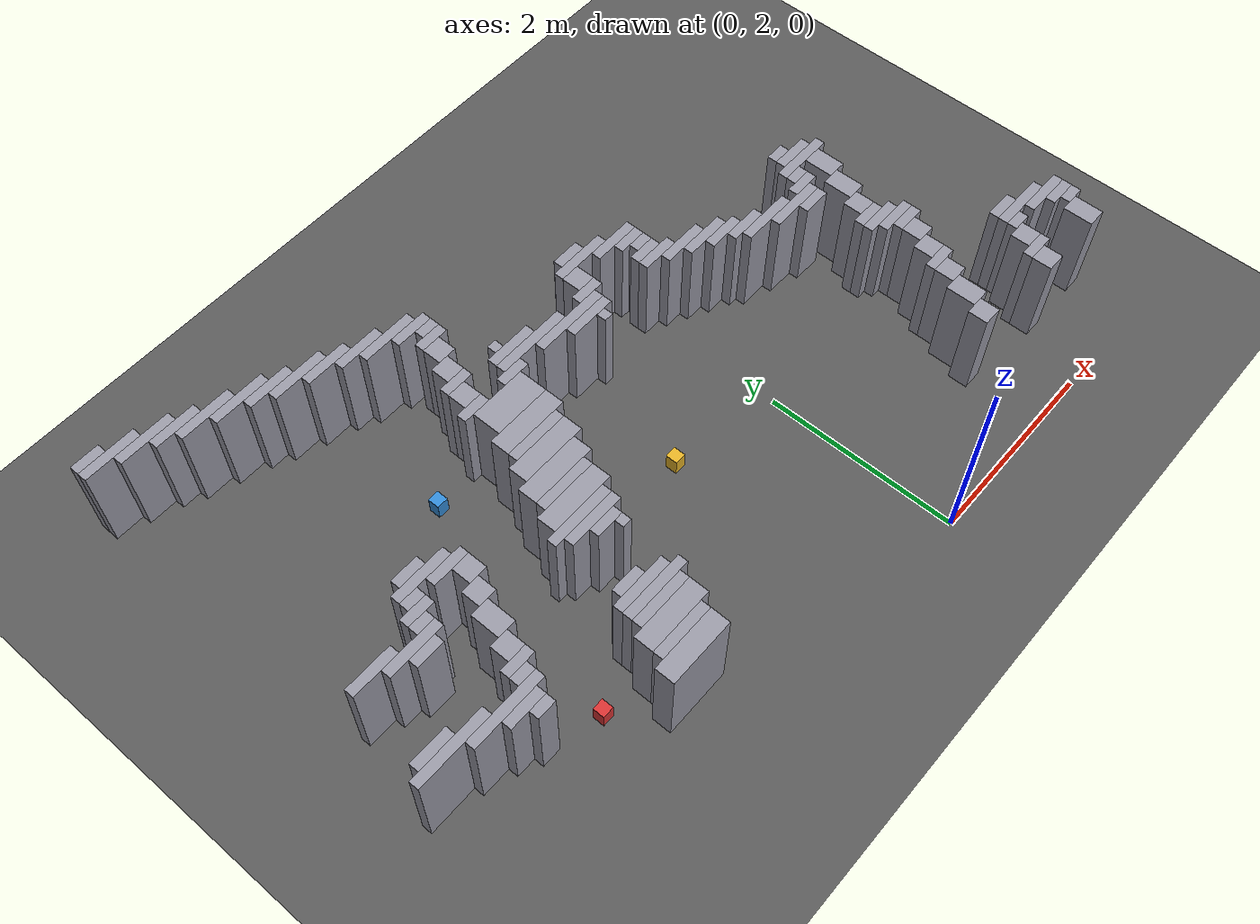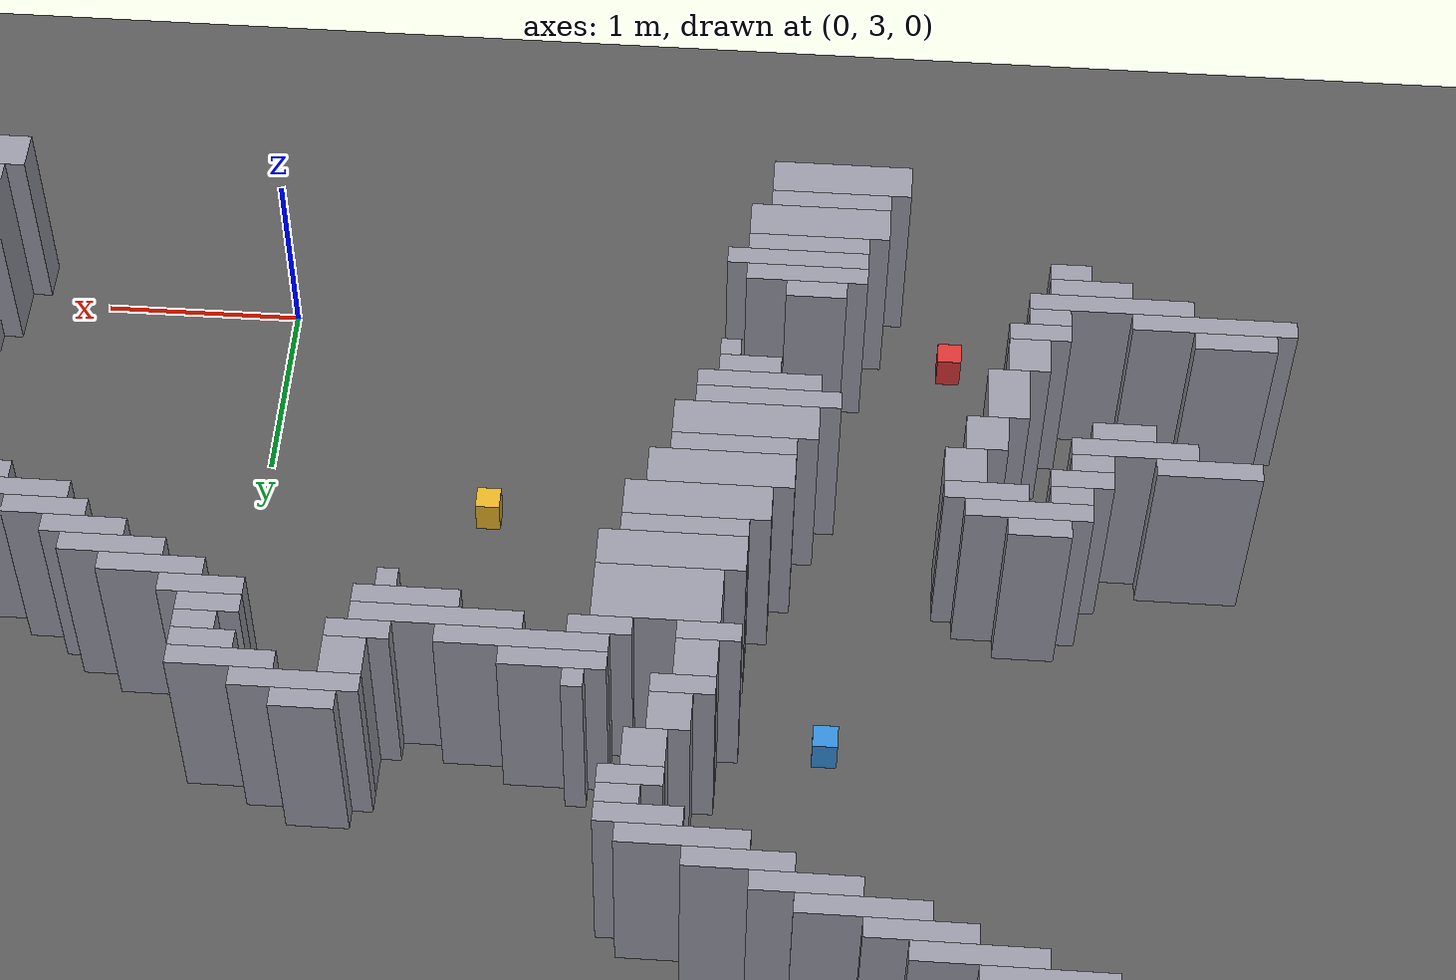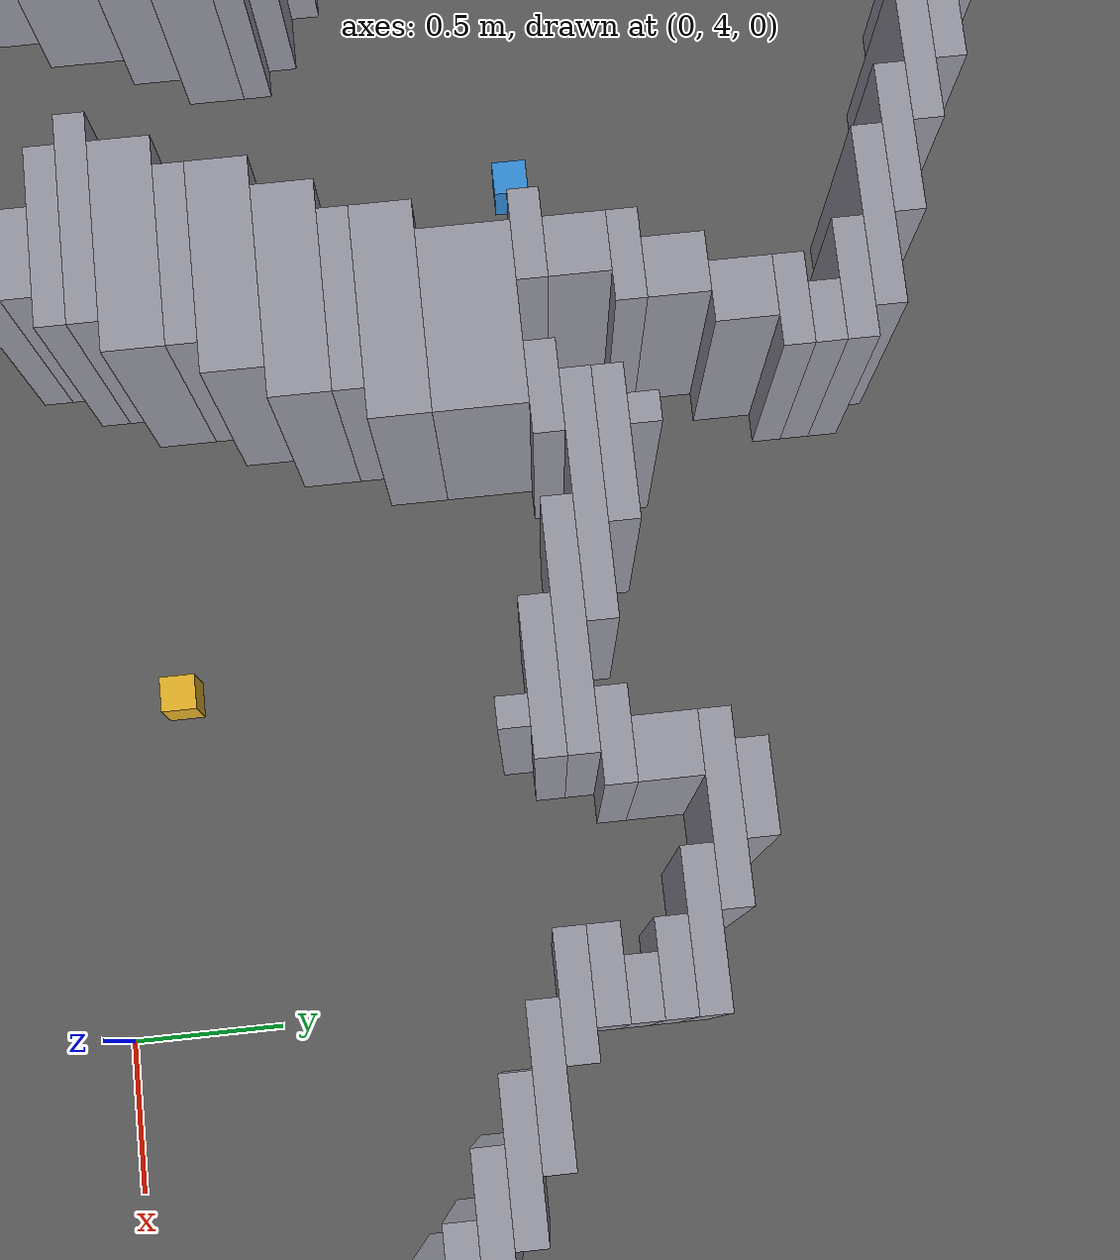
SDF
<sdf version="1.8">
 <world name="dimi">
  <model name="ground">
   <static>true</static>
   <link name="ground_link">
    <collision name="c"><geometry><plane><normal>0 0 1</normal><size>60 60</size></plane></geometry></collision>
    <visual name="v">
     <geometry><plane><normal>0 0 1</normal><size>60 60</size></plane></geometry>
     <material><ambient>0.3 0.3 0.3 1</ambient><diffuse>0.35 0.35 0.35 1</diffuse></material>
    </visual>
   </link>
  </model>
  <model name="walls">
   <static>true</static>
   <link name="wall_0">
    <pose>-4.8230 7.6800 0.5000 0 0 0</pose>
    <collision name="c"><geometry><box><size>0.3000 0.1000 1.0000</size></box></geometry></collision>
    <visual name="v">
     <geometry><box><size>0.3000 0.1000 1.0000</size></box></geometry>
     <material><ambient>0.5 0.5 0.55 1</ambient><diffuse>0.6 0.6 0.65 1</diffuse></material>
    </visual>
   </link>
   <link name="wall_2">
    <pose>-4.6730 7.5800 0.5000 0 0 0</pose>
    <collision name="c"><geometry><box><size>0.6000 0.1000 1.0000</size></box></geometry></collision>
    <visual name="v">
     <geometry><box><size>0.6000 0.1000 1.0000</size></box></geometry>
     <material><ambient>0.5 0.5 0.55 1</ambient><diffuse>0.6 0.6 0.65 1</diffuse></material>
    </visual>
   </link>
   <link name="wall_5">
    <pose>-4.3730 7.4800 0.5000 0 0 0</pose>
    <collision name="c"><geometry><box><size>0.6000 0.1000 1.0000</size></box></geometry></collision>
    <visual name="v">
     <geometry><box><size>0.6000 0.1000 1.0000</size></box></geometry>
     <material><ambient>0.5 0.5 0.55 1</ambient><diffuse>0.6 0.6 0.65 1</diffuse></material>
    </visual>
   </link>
   <link name="wall_7">
    <pose>-4.1230 7.3800 0.5000 0 0 0</pose>
    <collision name="c"><geometry><box><size>0.5000 0.1000 1.0000</size></box></geometry></collision>
    <visual name="v">
     <geometry><box><size>0.5000 0.1000 1.0000</size></box></geometry>
     <material><ambient>0.5 0.5 0.55 1</ambient><diffuse>0.6 0.6 0.65 1</diffuse></material>
    </visual>
   </link>
   <link name="wall_10">
    <pose>-3.8730 7.2800 0.5000 0 0 0</pose>
    <collision name="c"><geometry><box><size>0.6000 0.1000 1.0000</size></box></geometry></collision>
    <visual name="v">
     <geometry><box><size>0.6000 0.1000 1.0000</size></box></geometry>
     <material><ambient>0.5 0.5 0.55 1</ambient><diffuse>0.6 0.6 0.65 1</diffuse></material>
    </visual>
   </link>
   <link name="wall_12">
    <pose>-3.5730 7.1800 0.5000 0 0 0</pose>
    <collision name="c"><geometry><box><size>0.6000 0.1000 1.0000</size></box></geometry></collision>
    <visual name="v">
     <geometry><box><size>0.6000 0.1000 1.0000</size></box></geometry>
     <material><ambient>0.5 0.5 0.55 1</ambient><diffuse>0.6 0.6 0.65 1</diffuse></material>
    </visual>
   </link>
   <link name="wall_14">
    <pose>-3.3230 7.0800 0.5000 0 0 0</pose>
    <collision name="c"><geometry><box><size>0.5000 0.1000 1.0000</size></box></geometry></collision>
    <visual name="v">
     <geometry><box><size>0.5000 0.1000 1.0000</size></box></geometry>
     <material><ambient>0.5 0.5 0.55 1</ambient><diffuse>0.6 0.6 0.65 1</diffuse></material>
    </visual>
   </link>
   <link name="wall_16">
    <pose>-3.0730 6.9800 0.5000 0 0 0</pose>
    <collision name="c"><geometry><box><size>0.6000 0.1000 1.0000</size></box></geometry></collision>
    <visual name="v">
     <geometry><box><size>0.6000 0.1000 1.0000</size></box></geometry>
     <material><ambient>0.5 0.5 0.55 1</ambient><diffuse>0.6 0.6 0.65 1</diffuse></material>
    </visual>
   </link>
   <link name="wall_17">
    <pose>-2.8230 6.8800 0.5000 0 0 0</pose>
    <collision name="c"><geometry><box><size>0.5000 0.1000 1.0000</size></box></geometry></collision>
    <visual name="v">
     <geometry><box><size>0.5000 0.1000 1.0000</size></box></geometry>
     <material><ambient>0.5 0.5 0.55 1</ambient><diffuse>0.6 0.6 0.65 1</diffuse></material>
    </visual>
   </link>
   <link name="wall_19">
    <pose>-2.5230 6.7800 0.5000 0 0 0</pose>
    <collision name="c"><geometry><box><size>0.5000 0.1000 1.0000</size></box></geometry></collision>
    <visual name="v">
     <geometry><box><size>0.5000 0.1000 1.0000</size></box></geometry>
     <material><ambient>0.5 0.5 0.55 1</ambient><diffuse>0.6 0.6 0.65 1</diffuse></material>
    </visual>
   </link>
   <link name="wall_20">
    <pose>-2.2730 6.6800 0.5000 0 0 0</pose>
    <collision name="c"><geometry><box><size>0.6000 0.1000 1.0000</size></box></geometry></collision>
    <visual name="v">
     <geometry><box><size>0.6000 0.1000 1.0000</size></box></geometry>
     <material><ambient>0.5 0.5 0.55 1</ambient><diffuse>0.6 0.6 0.65 1</diffuse></material>
    </visual>
   </link>
   <link name="wall_22">
    <pose>-2.0730 6.5800 0.5000 0 0 0</pose>
    <collision name="c"><geometry><box><size>0.4000 0.1000 1.0000</size></box></geometry></collision>
    <visual name="v">
     <geometry><box><size>0.4000 0.1000 1.0000</size></box></geometry>
     <material><ambient>0.5 0.5 0.55 1</ambient><diffuse>0.6 0.6 0.65 1</diffuse></material>
    </visual>
   </link>
   <link name="wall_24">
    <pose>-1.9730 6.4800 0.5000 0 0 0</pose>
    <collision name="c"><geometry><box><size>0.2000 0.1000 1.0000</size></box></geometry></collision>
    <visual name="v">
     <geometry><box><size>0.2000 0.1000 1.0000</size></box></geometry>
     <material><ambient>0.5 0.5 0.55 1</ambient><diffuse>0.6 0.6 0.65 1</diffuse></material>
    </visual>
   </link>
   <link name="wall_26">
    <pose>-2.0230 6.3800 0.5000 0 0 0</pose>
    <collision name="c"><geometry><box><size>0.3000 0.1000 1.0000</size></box></geometry></collision>
    <visual name="v">
     <geometry><box><size>0.3000 0.1000 1.0000</size></box></geometry>
     <material><ambient>0.5 0.5 0.55 1</ambient><diffuse>0.6 0.6 0.65 1</diffuse></material>
    </visual>
   </link>
   <link name="wall_28">
    <pose>-2.0730 6.2300 0.5000 0 0 0</pose>
    <collision name="c"><geometry><box><size>0.2000 0.2000 1.0000</size></box></geometry></collision>
    <visual name="v">
     <geometry><box><size>0.2000 0.2000 1.0000</size></box></geometry>
     <material><ambient>0.5 0.5 0.55 1</ambient><diffuse>0.6 0.6 0.65 1</diffuse></material>
    </visual>
   </link>
   <link name="wall_30">
    <pose>-2.1730 6.0300 0.5000 0 0 0</pose>
    <collision name="c"><geometry><box><size>0.2000 0.2000 1.0000</size></box></geometry></collision>
    <visual name="v">
     <geometry><box><size>0.2000 0.2000 1.0000</size></box></geometry>
     <material><ambient>0.5 0.5 0.55 1</ambient><diffuse>0.6 0.6 0.65 1</diffuse></material>
    </visual>
   </link>
   <link name="wall_31">
    <pose>-0.5230 6.0800 0.5000 0 0 0</pose>
    <collision name="c"><geometry><box><size>0.3000 0.1000 1.0000</size></box></geometry></collision>
    <visual name="v">
     <geometry><box><size>0.3000 0.1000 1.0000</size></box></geometry>
     <material><ambient>0.5 0.5 0.55 1</ambient><diffuse>0.6 0.6 0.65 1</diffuse></material>
    </visual>
   </link>
   <link name="wall_32">
    <pose>-0.4730 5.9800 0.5000 0 0 0</pose>
    <collision name="c"><geometry><box><size>0.6000 0.1000 1.0000</size></box></geometry></collision>
    <visual name="v">
     <geometry><box><size>0.6000 0.1000 1.0000</size></box></geometry>
     <material><ambient>0.5 0.5 0.55 1</ambient><diffuse>0.6 0.6 0.65 1</diffuse></material>
    </visual>
   </link>
   <link name="wall_35">
    <pose>-2.2230 5.8800 0.5000 0 0 0</pose>
    <collision name="c"><geometry><box><size>0.3000 0.1000 1.0000</size></box></geometry></collision>
    <visual name="v">
     <geometry><box><size>0.3000 0.1000 1.0000</size></box></geometry>
     <material><ambient>0.5 0.5 0.55 1</ambient><diffuse>0.6 0.6 0.65 1</diffuse></material>
    </visual>
   </link>
   <link name="wall_36">
    <pose>-1.7230 5.8800 0.5000 0 0 0</pose>
    <collision name="c"><geometry><box><size>0.1000 0.1000 1.0000</size></box></geometry></collision>
    <visual name="v">
     <geometry><box><size>0.1000 0.1000 1.0000</size></box></geometry>
     <material><ambient>0.5 0.5 0.55 1</ambient><diffuse>0.6 0.6 0.65 1</diffuse></material>
    </visual>
   </link>
   <link name="wall_37">
    <pose>-0.6730 5.8300 0.5000 0 0 0</pose>
    <collision name="c"><geometry><box><size>0.2000 0.2000 1.0000</size></box></geometry></collision>
    <visual name="v">
     <geometry><box><size>0.2000 0.2000 1.0000</size></box></geometry>
     <material><ambient>0.5 0.5 0.55 1</ambient><diffuse>0.6 0.6 0.65 1</diffuse></material>
    </visual>
   </link>
   <link name="wall_38">
    <pose>-0.1230 5.8800 0.5000 0 0 0</pose>
    <collision name="c"><geometry><box><size>0.5000 0.1000 1.0000</size></box></geometry></collision>
    <visual name="v">
     <geometry><box><size>0.5000 0.1000 1.0000</size></box></geometry>
     <material><ambient>0.5 0.5 0.55 1</ambient><diffuse>0.6 0.6 0.65 1</diffuse></material>
    </visual>
   </link>
   <link name="wall_40">
    <pose>-2.2730 5.7300 0.5000 0 0 0</pose>
    <collision name="c"><geometry><box><size>0.2000 0.2000 1.0000</size></box></geometry></collision>
    <visual name="v">
     <geometry><box><size>0.2000 0.2000 1.0000</size></box></geometry>
     <material><ambient>0.5 0.5 0.55 1</ambient><diffuse>0.6 0.6 0.65 1</diffuse></material>
    </visual>
   </link>
   <link name="wall_41">
    <pose>-1.6230 5.7800 0.5000 0 0 0</pose>
    <collision name="c"><geometry><box><size>0.5000 0.1000 1.0000</size></box></geometry></collision>
    <visual name="v">
     <geometry><box><size>0.5000 0.1000 1.0000</size></box></geometry>
     <material><ambient>0.5 0.5 0.55 1</ambient><diffuse>0.6 0.6 0.65 1</diffuse></material>
    </visual>
   </link>
   <link name="wall_42">
    <pose>-0.0230 5.7800 0.5000 0 0 0</pose>
    <collision name="c"><geometry><box><size>0.3000 0.1000 1.0000</size></box></geometry></collision>
    <visual name="v">
     <geometry><box><size>0.3000 0.1000 1.0000</size></box></geometry>
     <material><ambient>0.5 0.5 0.55 1</ambient><diffuse>0.6 0.6 0.65 1</diffuse></material>
    </visual>
   </link>
   <link name="wall_43">
    <pose>-1.4730 5.6800 0.5000 0 0 0</pose>
    <collision name="c"><geometry><box><size>0.8000 0.1000 1.0000</size></box></geometry></collision>
    <visual name="v">
     <geometry><box><size>0.8000 0.1000 1.0000</size></box></geometry>
     <material><ambient>0.5 0.5 0.55 1</ambient><diffuse>0.6 0.6 0.65 1</diffuse></material>
    </visual>
   </link>
   <link name="wall_44">
    <pose>-0.7230 5.6800 0.5000 0 0 0</pose>
    <collision name="c"><geometry><box><size>0.3000 0.1000 1.0000</size></box></geometry></collision>
    <visual name="v">
     <geometry><box><size>0.3000 0.1000 1.0000</size></box></geometry>
     <material><ambient>0.5 0.5 0.55 1</ambient><diffuse>0.6 0.6 0.65 1</diffuse></material>
    </visual>
   </link>
   <link name="wall_45">
    <pose>0.0270 5.6800 0.5000 0 0 0</pose>
    <collision name="c"><geometry><box><size>0.2000 0.1000 1.0000</size></box></geometry></collision>
    <visual name="v">
     <geometry><box><size>0.2000 0.1000 1.0000</size></box></geometry>
     <material><ambient>0.5 0.5 0.55 1</ambient><diffuse>0.6 0.6 0.65 1</diffuse></material>
    </visual>
   </link>
   <link name="wall_47">
    <pose>-2.3230 5.5800 0.5000 0 0 0</pose>
    <collision name="c"><geometry><box><size>0.3000 0.1000 1.0000</size></box></geometry></collision>
    <visual name="v">
     <geometry><box><size>0.3000 0.1000 1.0000</size></box></geometry>
     <material><ambient>0.5 0.5 0.55 1</ambient><diffuse>0.6 0.6 0.65 1</diffuse></material>
    </visual>
   </link>
   <link name="wall_48">
    <pose>-1.8230 5.5800 0.5000 0 0 0</pose>
    <collision name="c"><geometry><box><size>0.3000 0.1000 1.0000</size></box></geometry></collision>
    <visual name="v">
     <geometry><box><size>0.3000 0.1000 1.0000</size></box></geometry>
     <material><ambient>0.5 0.5 0.55 1</ambient><diffuse>0.6 0.6 0.65 1</diffuse></material>
    </visual>
   </link>
   <link name="wall_49">
    <pose>-1.0730 5.5800 0.5000 0 0 0</pose>
    <collision name="c"><geometry><box><size>0.8000 0.1000 1.0000</size></box></geometry></collision>
    <visual name="v">
     <geometry><box><size>0.8000 0.1000 1.0000</size></box></geometry>
     <material><ambient>0.5 0.5 0.55 1</ambient><diffuse>0.6 0.6 0.65 1</diffuse></material>
    </visual>
   </link>
   <link name="wall_50">
    <pose>-0.0230 5.5800 0.5000 0 0 0</pose>
    <collision name="c"><geometry><box><size>0.3000 0.1000 1.0000</size></box></geometry></collision>
    <visual name="v">
     <geometry><box><size>0.3000 0.1000 1.0000</size></box></geometry>
     <material><ambient>0.5 0.5 0.55 1</ambient><diffuse>0.6 0.6 0.65 1</diffuse></material>
    </visual>
   </link>
   <link name="wall_51">
    <pose>-2.0730 5.3800 0.5000 0 0 0</pose>
    <collision name="c"><geometry><box><size>0.6000 0.3000 1.0000</size></box></geometry></collision>
    <visual name="v">
     <geometry><box><size>0.6000 0.3000 1.0000</size></box></geometry>
     <material><ambient>0.5 0.5 0.55 1</ambient><diffuse>0.6 0.6 0.65 1</diffuse></material>
    </visual>
   </link>
   <link name="wall_52">
    <pose>-0.9230 5.4800 0.5000 0 0 0</pose>
    <collision name="c"><geometry><box><size>0.5000 0.1000 1.0000</size></box></geometry></collision>
    <visual name="v">
     <geometry><box><size>0.5000 0.1000 1.0000</size></box></geometry>
     <material><ambient>0.5 0.5 0.55 1</ambient><diffuse>0.6 0.6 0.65 1</diffuse></material>
    </visual>
   </link>
   <link name="wall_53">
    <pose>0.0270 5.4800 0.5000 0 0 0</pose>
    <collision name="c"><geometry><box><size>0.4000 0.1000 1.0000</size></box></geometry></collision>
    <visual name="v">
     <geometry><box><size>0.4000 0.1000 1.0000</size></box></geometry>
     <material><ambient>0.5 0.5 0.55 1</ambient><diffuse>0.6 0.6 0.65 1</diffuse></material>
    </visual>
   </link>
   <link name="wall_55">
    <pose>-0.8230 5.3800 0.5000 0 0 0</pose>
    <collision name="c"><geometry><box><size>0.1000 0.1000 1.0000</size></box></geometry></collision>
    <visual name="v">
     <geometry><box><size>0.1000 0.1000 1.0000</size></box></geometry>
     <material><ambient>0.5 0.5 0.55 1</ambient><diffuse>0.6 0.6 0.65 1</diffuse></material>
    </visual>
   </link>
   <link name="wall_56">
    <pose>0.2770 5.3800 0.5000 0 0 0</pose>
    <collision name="c"><geometry><box><size>0.5000 0.1000 1.0000</size></box></geometry></collision>
    <visual name="v">
     <geometry><box><size>0.5000 0.1000 1.0000</size></box></geometry>
     <material><ambient>0.5 0.5 0.55 1</ambient><diffuse>0.6 0.6 0.65 1</diffuse></material>
    </visual>
   </link>
   <link name="wall_57">
    <pose>1.7270 5.3800 0.5000 0 0 0</pose>
    <collision name="c"><geometry><box><size>0.2000 0.1000 1.0000</size></box></geometry></collision>
    <visual name="v">
     <geometry><box><size>0.2000 0.1000 1.0000</size></box></geometry>
     <material><ambient>0.5 0.5 0.55 1</ambient><diffuse>0.6 0.6 0.65 1</diffuse></material>
    </visual>
   </link>
   <link name="wall_59">
    <pose>0.4770 5.2800 0.5000 0 0 0</pose>
    <collision name="c"><geometry><box><size>0.5000 0.1000 1.0000</size></box></geometry></collision>
    <visual name="v">
     <geometry><box><size>0.5000 0.1000 1.0000</size></box></geometry>
     <material><ambient>0.5 0.5 0.55 1</ambient><diffuse>0.6 0.6 0.65 1</diffuse></material>
    </visual>
   </link>
   <link name="wall_60">
    <pose>1.8270 5.2800 0.5000 0 0 0</pose>
    <collision name="c"><geometry><box><size>0.4000 0.1000 1.0000</size></box></geometry></collision>
    <visual name="v">
     <geometry><box><size>0.4000 0.1000 1.0000</size></box></geometry>
     <material><ambient>0.5 0.5 0.55 1</ambient><diffuse>0.6 0.6 0.65 1</diffuse></material>
    </visual>
   </link>
   <link name="wall_62">
    <pose>-2.1230 5.1300 0.5000 0 0 0</pose>
    <collision name="c"><geometry><box><size>0.7000 0.2000 1.0000</size></box></geometry></collision>
    <visual name="v">
     <geometry><box><size>0.7000 0.2000 1.0000</size></box></geometry>
     <material><ambient>0.5 0.5 0.55 1</ambient><diffuse>0.6 0.6 0.65 1</diffuse></material>
    </visual>
   </link>
   <link name="wall_63">
    <pose>0.6270 5.1800 0.5000 0 0 0</pose>
    <collision name="c"><geometry><box><size>0.4000 0.1000 1.0000</size></box></geometry></collision>
    <visual name="v">
     <geometry><box><size>0.4000 0.1000 1.0000</size></box></geometry>
     <material><ambient>0.5 0.5 0.55 1</ambient><diffuse>0.6 0.6 0.65 1</diffuse></material>
    </visual>
   </link>
   <link name="wall_64">
    <pose>1.8270 5.1800 0.5000 0 0 0</pose>
    <collision name="c"><geometry><box><size>0.6000 0.1000 1.0000</size></box></geometry></collision>
    <visual name="v">
     <geometry><box><size>0.6000 0.1000 1.0000</size></box></geometry>
     <material><ambient>0.5 0.5 0.55 1</ambient><diffuse>0.6 0.6 0.65 1</diffuse></material>
    </visual>
   </link>
   <link name="wall_66">
    <pose>0.8270 5.0800 0.5000 0 0 0</pose>
    <collision name="c"><geometry><box><size>0.4000 0.1000 1.0000</size></box></geometry></collision>
    <visual name="v">
     <geometry><box><size>0.4000 0.1000 1.0000</size></box></geometry>
     <material><ambient>0.5 0.5 0.55 1</ambient><diffuse>0.6 0.6 0.65 1</diffuse></material>
    </visual>
   </link>
   <link name="wall_67">
    <pose>1.6270 5.0800 0.5000 0 0 0</pose>
    <collision name="c"><geometry><box><size>0.2000 0.1000 1.0000</size></box></geometry></collision>
    <visual name="v">
     <geometry><box><size>0.2000 0.1000 1.0000</size></box></geometry>
     <material><ambient>0.5 0.5 0.55 1</ambient><diffuse>0.6 0.6 0.65 1</diffuse></material>
    </visual>
   </link>
   <link name="wall_68">
    <pose>1.9270 4.9800 0.5000 0 0 0</pose>
    <collision name="c"><geometry><box><size>0.2000 0.3000 1.0000</size></box></geometry></collision>
    <visual name="v">
     <geometry><box><size>0.2000 0.3000 1.0000</size></box></geometry>
     <material><ambient>0.5 0.5 0.55 1</ambient><diffuse>0.6 0.6 0.65 1</diffuse></material>
    </visual>
   </link>
   <link name="wall_70">
    <pose>-2.1730 4.9800 0.5000 0 0 0</pose>
    <collision name="c"><geometry><box><size>0.6000 0.1000 1.0000</size></box></geometry></collision>
    <visual name="v">
     <geometry><box><size>0.6000 0.1000 1.0000</size></box></geometry>
     <material><ambient>0.5 0.5 0.55 1</ambient><diffuse>0.6 0.6 0.65 1</diffuse></material>
    </visual>
   </link>
   <link name="wall_71">
    <pose>1.0270 4.9800 0.5000 0 0 0</pose>
    <collision name="c"><geometry><box><size>0.6000 0.1000 1.0000</size></box></geometry></collision>
    <visual name="v">
     <geometry><box><size>0.6000 0.1000 1.0000</size></box></geometry>
     <material><ambient>0.5 0.5 0.55 1</ambient><diffuse>0.6 0.6 0.65 1</diffuse></material>
    </visual>
   </link>
   <link name="wall_72">
    <pose>1.5770 4.9800 0.5000 0 0 0</pose>
    <collision name="c"><geometry><box><size>0.3000 0.1000 1.0000</size></box></geometry></collision>
    <visual name="v">
     <geometry><box><size>0.3000 0.1000 1.0000</size></box></geometry>
     <material><ambient>0.5 0.5 0.55 1</ambient><diffuse>0.6 0.6 0.65 1</diffuse></material>
    </visual>
   </link>
   <link name="wall_75">
    <pose>-3.8230 4.8800 0.5000 0 0 0</pose>
    <collision name="c"><geometry><box><size>0.3000 0.1000 1.0000</size></box></geometry></collision>
    <visual name="v">
     <geometry><box><size>0.3000 0.1000 1.0000</size></box></geometry>
     <material><ambient>0.5 0.5 0.55 1</ambient><diffuse>0.6 0.6 0.65 1</diffuse></material>
    </visual>
   </link>
   <link name="wall_76">
    <pose>-2.2230 4.8300 0.5000 0 0 0</pose>
    <collision name="c"><geometry><box><size>0.7000 0.2000 1.0000</size></box></geometry></collision>
    <visual name="v">
     <geometry><box><size>0.7000 0.2000 1.0000</size></box></geometry>
     <material><ambient>0.5 0.5 0.55 1</ambient><diffuse>0.6 0.6 0.65 1</diffuse></material>
    </visual>
   </link>
   <link name="wall_77">
    <pose>1.3270 4.8800 0.5000 0 0 0</pose>
    <collision name="c"><geometry><box><size>0.6000 0.1000 1.0000</size></box></geometry></collision>
    <visual name="v">
     <geometry><box><size>0.6000 0.1000 1.0000</size></box></geometry>
     <material><ambient>0.5 0.5 0.55 1</ambient><diffuse>0.6 0.6 0.65 1</diffuse></material>
    </visual>
   </link>
   <link name="wall_80">
    <pose>-3.7730 4.7800 0.5000 0 0 0</pose>
    <collision name="c"><geometry><box><size>0.6000 0.1000 1.0000</size></box></geometry></collision>
    <visual name="v">
     <geometry><box><size>0.6000 0.1000 1.0000</size></box></geometry>
     <material><ambient>0.5 0.5 0.55 1</ambient><diffuse>0.6 0.6 0.65 1</diffuse></material>
    </visual>
   </link>
   <link name="wall_81">
    <pose>1.4770 4.7800 0.5000 0 0 0</pose>
    <collision name="c"><geometry><box><size>0.3000 0.1000 1.0000</size></box></geometry></collision>
    <visual name="v">
     <geometry><box><size>0.3000 0.1000 1.0000</size></box></geometry>
     <material><ambient>0.5 0.5 0.55 1</ambient><diffuse>0.6 0.6 0.65 1</diffuse></material>
    </visual>
   </link>
   <link name="wall_82">
    <pose>1.8270 4.6800 0.5000 0 0 0</pose>
    <collision name="c"><geometry><box><size>0.2000 0.3000 1.0000</size></box></geometry></collision>
    <visual name="v">
     <geometry><box><size>0.2000 0.3000 1.0000</size></box></geometry>
     <material><ambient>0.5 0.5 0.55 1</ambient><diffuse>0.6 0.6 0.65 1</diffuse></material>
    </visual>
   </link>
   <link name="wall_86">
    <pose>-3.9730 4.6800 0.5000 0 0 0</pose>
    <collision name="c"><geometry><box><size>0.2000 0.1000 1.0000</size></box></geometry></collision>
    <visual name="v">
     <geometry><box><size>0.2000 0.1000 1.0000</size></box></geometry>
     <material><ambient>0.5 0.5 0.55 1</ambient><diffuse>0.6 0.6 0.65 1</diffuse></material>
    </visual>
   </link>
   <link name="wall_87">
    <pose>-3.5730 4.6800 0.5000 0 0 0</pose>
    <collision name="c"><geometry><box><size>0.4000 0.1000 1.0000</size></box></geometry></collision>
    <visual name="v">
     <geometry><box><size>0.4000 0.1000 1.0000</size></box></geometry>
     <material><ambient>0.5 0.5 0.55 1</ambient><diffuse>0.6 0.6 0.65 1</diffuse></material>
    </visual>
   </link>
   <link name="wall_88">
    <pose>-2.3230 4.6300 0.5000 0 0 0</pose>
    <collision name="c"><geometry><box><size>0.7000 0.2000 1.0000</size></box></geometry></collision>
    <visual name="v">
     <geometry><box><size>0.7000 0.2000 1.0000</size></box></geometry>
     <material><ambient>0.5 0.5 0.55 1</ambient><diffuse>0.6 0.6 0.65 1</diffuse></material>
    </visual>
   </link>
   <link name="wall_92">
    <pose>-4.0230 4.5800 0.5000 0 0 0</pose>
    <collision name="c"><geometry><box><size>0.3000 0.1000 1.0000</size></box></geometry></collision>
    <visual name="v">
     <geometry><box><size>0.3000 0.1000 1.0000</size></box></geometry>
     <material><ambient>0.5 0.5 0.55 1</ambient><diffuse>0.6 0.6 0.65 1</diffuse></material>
    </visual>
   </link>
   <link name="wall_93">
    <pose>-3.4730 4.5300 0.5000 0 0 0</pose>
    <collision name="c"><geometry><box><size>0.2000 0.2000 1.0000</size></box></geometry></collision>
    <visual name="v">
     <geometry><box><size>0.2000 0.2000 1.0000</size></box></geometry>
     <material><ambient>0.5 0.5 0.55 1</ambient><diffuse>0.6 0.6 0.65 1</diffuse></material>
    </visual>
   </link>
   <link name="wall_95">
    <pose>-4.6230 4.4800 0.5000 0 0 0</pose>
    <collision name="c"><geometry><box><size>0.5000 0.1000 1.0000</size></box></geometry></collision>
    <visual name="v">
     <geometry><box><size>0.5000 0.1000 1.0000</size></box></geometry>
     <material><ambient>0.5 0.5 0.55 1</ambient><diffuse>0.6 0.6 0.65 1</diffuse></material>
    </visual>
   </link>
   <link name="wall_96">
    <pose>-4.0730 4.4800 0.5000 0 0 0</pose>
    <collision name="c"><geometry><box><size>0.2000 0.1000 1.0000</size></box></geometry></collision>
    <visual name="v">
     <geometry><box><size>0.2000 0.1000 1.0000</size></box></geometry>
     <material><ambient>0.5 0.5 0.55 1</ambient><diffuse>0.6 0.6 0.65 1</diffuse></material>
    </visual>
   </link>
   <link name="wall_97">
    <pose>-2.3730 4.4800 0.5000 0 0 0</pose>
    <collision name="c"><geometry><box><size>0.6000 0.1000 1.0000</size></box></geometry></collision>
    <visual name="v">
     <geometry><box><size>0.6000 0.1000 1.0000</size></box></geometry>
     <material><ambient>0.5 0.5 0.55 1</ambient><diffuse>0.6 0.6 0.65 1</diffuse></material>
    </visual>
   </link>
   <link name="wall_98">
    <pose>1.7270 4.4300 0.5000 0 0 0</pose>
    <collision name="c"><geometry><box><size>0.2000 0.2000 1.0000</size></box></geometry></collision>
    <visual name="v">
     <geometry><box><size>0.2000 0.2000 1.0000</size></box></geometry>
     <material><ambient>0.5 0.5 0.55 1</ambient><diffuse>0.6 0.6 0.65 1</diffuse></material>
    </visual>
   </link>
   <link name="wall_101">
    <pose>-4.2730 4.3800 0.5000 0 0 0</pose>
    <collision name="c"><geometry><box><size>0.6000 0.1000 1.0000</size></box></geometry></collision>
    <visual name="v">
     <geometry><box><size>0.6000 0.1000 1.0000</size></box></geometry>
     <material><ambient>0.5 0.5 0.55 1</ambient><diffuse>0.6 0.6 0.65 1</diffuse></material>
    </visual>
   </link>
   <link name="wall_102">
    <pose>-3.5730 4.3300 0.5000 0 0 0</pose>
    <collision name="c"><geometry><box><size>0.2000 0.2000 1.0000</size></box></geometry></collision>
    <visual name="v">
     <geometry><box><size>0.2000 0.2000 1.0000</size></box></geometry>
     <material><ambient>0.5 0.5 0.55 1</ambient><diffuse>0.6 0.6 0.65 1</diffuse></material>
    </visual>
   </link>
   <link name="wall_103">
    <pose>-2.4230 4.3300 0.5000 0 0 0</pose>
    <collision name="c"><geometry><box><size>0.7000 0.2000 1.0000</size></box></geometry></collision>
    <visual name="v">
     <geometry><box><size>0.7000 0.2000 1.0000</size></box></geometry>
     <material><ambient>0.5 0.5 0.55 1</ambient><diffuse>0.6 0.6 0.65 1</diffuse></material>
    </visual>
   </link>
   <link name="wall_105">
    <pose>-4.2230 4.2800 0.5000 0 0 0</pose>
    <collision name="c"><geometry><box><size>0.3000 0.1000 1.0000</size></box></geometry></collision>
    <visual name="v">
     <geometry><box><size>0.3000 0.1000 1.0000</size></box></geometry>
     <material><ambient>0.5 0.5 0.55 1</ambient><diffuse>0.6 0.6 0.65 1</diffuse></material>
    </visual>
   </link>
   <link name="wall_106">
    <pose>1.6770 4.2800 0.5000 0 0 0</pose>
    <collision name="c"><geometry><box><size>0.3000 0.1000 1.0000</size></box></geometry></collision>
    <visual name="v">
     <geometry><box><size>0.3000 0.1000 1.0000</size></box></geometry>
     <material><ambient>0.5 0.5 0.55 1</ambient><diffuse>0.6 0.6 0.65 1</diffuse></material>
    </visual>
   </link>
   <link name="wall_108">
    <pose>-3.6730 4.0800 0.5000 0 0 0</pose>
    <collision name="c"><geometry><box><size>0.2000 0.3000 1.0000</size></box></geometry></collision>
    <visual name="v">
     <geometry><box><size>0.2000 0.3000 1.0000</size></box></geometry>
     <material><ambient>0.5 0.5 0.55 1</ambient><diffuse>0.6 0.6 0.65 1</diffuse></material>
    </visual>
   </link>
   <link name="wall_109">
    <pose>-2.5230 4.1800 0.5000 0 0 0</pose>
    <collision name="c"><geometry><box><size>0.7000 0.1000 1.0000</size></box></geometry></collision>
    <visual name="v">
     <geometry><box><size>0.7000 0.1000 1.0000</size></box></geometry>
     <material><ambient>0.5 0.5 0.55 1</ambient><diffuse>0.6 0.6 0.65 1</diffuse></material>
    </visual>
   </link>
   <link name="wall_110">
    <pose>1.7270 4.1800 0.5000 0 0 0</pose>
    <collision name="c"><geometry><box><size>0.4000 0.1000 1.0000</size></box></geometry></collision>
    <visual name="v">
     <geometry><box><size>0.4000 0.1000 1.0000</size></box></geometry>
     <material><ambient>0.5 0.5 0.55 1</ambient><diffuse>0.6 0.6 0.65 1</diffuse></material>
    </visual>
   </link>
   <link name="wall_112">
    <pose>-2.4730 4.0800 0.5000 0 0 0</pose>
    <collision name="c"><geometry><box><size>0.6000 0.1000 1.0000</size></box></geometry></collision>
    <visual name="v">
     <geometry><box><size>0.6000 0.1000 1.0000</size></box></geometry>
     <material><ambient>0.5 0.5 0.55 1</ambient><diffuse>0.6 0.6 0.65 1</diffuse></material>
    </visual>
   </link>
   <link name="wall_113">
    <pose>1.8270 4.0800 0.5000 0 0 0</pose>
    <collision name="c"><geometry><box><size>0.4000 0.1000 1.0000</size></box></geometry></collision>
    <visual name="v">
     <geometry><box><size>0.4000 0.1000 1.0000</size></box></geometry>
     <material><ambient>0.5 0.5 0.55 1</ambient><diffuse>0.6 0.6 0.65 1</diffuse></material>
    </visual>
   </link>
   <link name="wall_114">
    <pose>-2.4230 3.9800 0.5000 0 0 0</pose>
    <collision name="c"><geometry><box><size>0.3000 0.1000 1.0000</size></box></geometry></collision>
    <visual name="v">
     <geometry><box><size>0.3000 0.1000 1.0000</size></box></geometry>
     <material><ambient>0.5 0.5 0.55 1</ambient><diffuse>0.6 0.6 0.65 1</diffuse></material>
    </visual>
   </link>
   <link name="wall_115">
    <pose>1.8770 3.9800 0.5000 0 0 0</pose>
    <collision name="c"><geometry><box><size>0.3000 0.1000 1.0000</size></box></geometry></collision>
    <visual name="v">
     <geometry><box><size>0.3000 0.1000 1.0000</size></box></geometry>
     <material><ambient>0.5 0.5 0.55 1</ambient><diffuse>0.6 0.6 0.65 1</diffuse></material>
    </visual>
   </link>
   <link name="wall_118">
    <pose>-3.7730 3.8300 0.5000 0 0 0</pose>
    <collision name="c"><geometry><box><size>0.2000 0.2000 1.0000</size></box></geometry></collision>
    <visual name="v">
     <geometry><box><size>0.2000 0.2000 1.0000</size></box></geometry>
     <material><ambient>0.5 0.5 0.55 1</ambient><diffuse>0.6 0.6 0.65 1</diffuse></material>
    </visual>
   </link>
   <link name="wall_119">
    <pose>-2.3230 3.8800 0.5000 0 0 0</pose>
    <collision name="c"><geometry><box><size>0.1000 0.1000 1.0000</size></box></geometry></collision>
    <visual name="v">
     <geometry><box><size>0.1000 0.1000 1.0000</size></box></geometry>
     <material><ambient>0.5 0.5 0.55 1</ambient><diffuse>0.6 0.6 0.65 1</diffuse></material>
    </visual>
   </link>
   <link name="wall_120">
    <pose>1.8270 3.8300 0.5000 0 0 0</pose>
    <collision name="c"><geometry><box><size>0.2000 0.2000 1.0000</size></box></geometry></collision>
    <visual name="v">
     <geometry><box><size>0.2000 0.2000 1.0000</size></box></geometry>
     <material><ambient>0.5 0.5 0.55 1</ambient><diffuse>0.6 0.6 0.65 1</diffuse></material>
    </visual>
   </link>
   <link name="wall_124">
    <pose>-4.7730 3.6800 0.5000 0 0 0</pose>
    <collision name="c"><geometry><box><size>0.4000 0.1000 1.0000</size></box></geometry></collision>
    <visual name="v">
     <geometry><box><size>0.4000 0.1000 1.0000</size></box></geometry>
     <material><ambient>0.5 0.5 0.55 1</ambient><diffuse>0.6 0.6 0.65 1</diffuse></material>
    </visual>
   </link>
   <link name="wall_125">
    <pose>-3.8230 3.6800 0.5000 0 0 0</pose>
    <collision name="c"><geometry><box><size>0.3000 0.1000 1.0000</size></box></geometry></collision>
    <visual name="v">
     <geometry><box><size>0.3000 0.1000 1.0000</size></box></geometry>
     <material><ambient>0.5 0.5 0.55 1</ambient><diffuse>0.6 0.6 0.65 1</diffuse></material>
    </visual>
   </link>
   <link name="wall_126">
    <pose>1.7270 3.6300 0.5000 0 0 0</pose>
    <collision name="c"><geometry><box><size>0.2000 0.2000 1.0000</size></box></geometry></collision>
    <visual name="v">
     <geometry><box><size>0.2000 0.2000 1.0000</size></box></geometry>
     <material><ambient>0.5 0.5 0.55 1</ambient><diffuse>0.6 0.6 0.65 1</diffuse></material>
    </visual>
   </link>
   <link name="wall_129">
    <pose>-4.6730 3.5800 0.5000 0 0 0</pose>
    <collision name="c"><geometry><box><size>0.8000 0.1000 1.0000</size></box></geometry></collision>
    <visual name="v">
     <geometry><box><size>0.8000 0.1000 1.0000</size></box></geometry>
     <material><ambient>0.5 0.5 0.55 1</ambient><diffuse>0.6 0.6 0.65 1</diffuse></material>
    </visual>
   </link>
   <link name="wall_130">
    <pose>-3.8730 3.5800 0.5000 0 0 0</pose>
    <collision name="c"><geometry><box><size>0.2000 0.1000 1.0000</size></box></geometry></collision>
    <visual name="v">
     <geometry><box><size>0.2000 0.1000 1.0000</size></box></geometry>
     <material><ambient>0.5 0.5 0.55 1</ambient><diffuse>0.6 0.6 0.65 1</diffuse></material>
    </visual>
   </link>
   <link name="wall_132">
    <pose>-4.1730 3.4800 0.5000 0 0 0</pose>
    <collision name="c"><geometry><box><size>0.8000 0.1000 1.0000</size></box></geometry></collision>
    <visual name="v">
     <geometry><box><size>0.8000 0.1000 1.0000</size></box></geometry>
     <material><ambient>0.5 0.5 0.55 1</ambient><diffuse>0.6 0.6 0.65 1</diffuse></material>
    </visual>
   </link>
   <link name="wall_133">
    <pose>-2.7230 3.4800 0.5000 0 0 0</pose>
    <collision name="c"><geometry><box><size>0.3000 0.1000 1.0000</size></box></geometry></collision>
    <visual name="v">
     <geometry><box><size>0.3000 0.1000 1.0000</size></box></geometry>
     <material><ambient>0.5 0.5 0.55 1</ambient><diffuse>0.6 0.6 0.65 1</diffuse></material>
    </visual>
   </link>
   <link name="wall_134">
    <pose>1.6770 3.4800 0.5000 0 0 0</pose>
    <collision name="c"><geometry><box><size>0.3000 0.1000 1.0000</size></box></geometry></collision>
    <visual name="v">
     <geometry><box><size>0.3000 0.1000 1.0000</size></box></geometry>
     <material><ambient>0.5 0.5 0.55 1</ambient><diffuse>0.6 0.6 0.65 1</diffuse></material>
    </visual>
   </link>
   <link name="wall_137">
    <pose>-4.0730 3.3800 0.5000 0 0 0</pose>
    <collision name="c"><geometry><box><size>0.4000 0.1000 1.0000</size></box></geometry></collision>
    <visual name="v">
     <geometry><box><size>0.4000 0.1000 1.0000</size></box></geometry>
     <material><ambient>0.5 0.5 0.55 1</ambient><diffuse>0.6 0.6 0.65 1</diffuse></material>
    </visual>
   </link>
   <link name="wall_138">
    <pose>-2.6730 3.3800 0.5000 0 0 0</pose>
    <collision name="c"><geometry><box><size>0.6000 0.1000 1.0000</size></box></geometry></collision>
    <visual name="v">
     <geometry><box><size>0.6000 0.1000 1.0000</size></box></geometry>
     <material><ambient>0.5 0.5 0.55 1</ambient><diffuse>0.6 0.6 0.65 1</diffuse></material>
    </visual>
   </link>
   <link name="wall_139">
    <pose>1.6270 3.3300 0.5000 0 0 0</pose>
    <collision name="c"><geometry><box><size>0.2000 0.2000 1.0000</size></box></geometry></collision>
    <visual name="v">
     <geometry><box><size>0.2000 0.2000 1.0000</size></box></geometry>
     <material><ambient>0.5 0.5 0.55 1</ambient><diffuse>0.6 0.6 0.65 1</diffuse></material>
    </visual>
   </link>
   <link name="wall_140">
    <pose>2.5770 3.3800 0.5000 0 0 0</pose>
    <collision name="c"><geometry><box><size>0.3000 0.1000 1.0000</size></box></geometry></collision>
    <visual name="v">
     <geometry><box><size>0.3000 0.1000 1.0000</size></box></geometry>
     <material><ambient>0.5 0.5 0.55 1</ambient><diffuse>0.6 0.6 0.65 1</diffuse></material>
    </visual>
   </link>
   <link name="wall_143">
    <pose>-3.9730 3.2800 0.5000 0 0 0</pose>
    <collision name="c"><geometry><box><size>0.2000 0.1000 1.0000</size></box></geometry></collision>
    <visual name="v">
     <geometry><box><size>0.2000 0.1000 1.0000</size></box></geometry>
     <material><ambient>0.5 0.5 0.55 1</ambient><diffuse>0.6 0.6 0.65 1</diffuse></material>
    </visual>
   </link>
   <link name="wall_144">
    <pose>-2.6230 3.2800 0.5000 0 0 0</pose>
    <collision name="c"><geometry><box><size>0.7000 0.1000 1.0000</size></box></geometry></collision>
    <visual name="v">
     <geometry><box><size>0.7000 0.1000 1.0000</size></box></geometry>
     <material><ambient>0.5 0.5 0.55 1</ambient><diffuse>0.6 0.6 0.65 1</diffuse></material>
    </visual>
   </link>
   <link name="wall_145">
    <pose>2.7270 3.2800 0.5000 0 0 0</pose>
    <collision name="c"><geometry><box><size>0.6000 0.1000 1.0000</size></box></geometry></collision>
    <visual name="v">
     <geometry><box><size>0.6000 0.1000 1.0000</size></box></geometry>
     <material><ambient>0.5 0.5 0.55 1</ambient><diffuse>0.6 0.6 0.65 1</diffuse></material>
    </visual>
   </link>
   <link name="wall_146">
    <pose>-2.6730 3.1800 0.5000 0 0 0</pose>
    <collision name="c"><geometry><box><size>0.6000 0.1000 1.0000</size></box></geometry></collision>
    <visual name="v">
     <geometry><box><size>0.6000 0.1000 1.0000</size></box></geometry>
     <material><ambient>0.5 0.5 0.55 1</ambient><diffuse>0.6 0.6 0.65 1</diffuse></material>
    </visual>
   </link>
   <link name="wall_147">
    <pose>1.5270 3.0800 0.5000 0 0 0</pose>
    <collision name="c"><geometry><box><size>0.2000 0.3000 1.0000</size></box></geometry></collision>
    <visual name="v">
     <geometry><box><size>0.2000 0.3000 1.0000</size></box></geometry>
     <material><ambient>0.5 0.5 0.55 1</ambient><diffuse>0.6 0.6 0.65 1</diffuse></material>
    </visual>
   </link>
   <link name="wall_148">
    <pose>2.5270 3.1800 0.5000 0 0 0</pose>
    <collision name="c"><geometry><box><size>0.2000 0.1000 1.0000</size></box></geometry></collision>
    <visual name="v">
     <geometry><box><size>0.2000 0.1000 1.0000</size></box></geometry>
     <material><ambient>0.5 0.5 0.55 1</ambient><diffuse>0.6 0.6 0.65 1</diffuse></material>
    </visual>
   </link>
   <link name="wall_149">
    <pose>2.9770 3.1800 0.5000 0 0 0</pose>
    <collision name="c"><geometry><box><size>0.5000 0.1000 1.0000</size></box></geometry></collision>
    <visual name="v">
     <geometry><box><size>0.5000 0.1000 1.0000</size></box></geometry>
     <material><ambient>0.5 0.5 0.55 1</ambient><diffuse>0.6 0.6 0.65 1</diffuse></material>
    </visual>
   </link>
   <link name="wall_151">
    <pose>-2.7230 3.0300 0.5000 0 0 0</pose>
    <collision name="c"><geometry><box><size>0.7000 0.2000 1.0000</size></box></geometry></collision>
    <visual name="v">
     <geometry><box><size>0.7000 0.2000 1.0000</size></box></geometry>
     <material><ambient>0.5 0.5 0.55 1</ambient><diffuse>0.6 0.6 0.65 1</diffuse></material>
    </visual>
   </link>
   <link name="wall_152">
    <pose>2.4270 3.0300 0.5000 0 0 0</pose>
    <collision name="c"><geometry><box><size>0.2000 0.2000 1.0000</size></box></geometry></collision>
    <visual name="v">
     <geometry><box><size>0.2000 0.2000 1.0000</size></box></geometry>
     <material><ambient>0.5 0.5 0.55 1</ambient><diffuse>0.6 0.6 0.65 1</diffuse></material>
    </visual>
   </link>
   <link name="wall_153">
    <pose>3.0770 3.0800 0.5000 0 0 0</pose>
    <collision name="c"><geometry><box><size>0.3000 0.1000 1.0000</size></box></geometry></collision>
    <visual name="v">
     <geometry><box><size>0.3000 0.1000 1.0000</size></box></geometry>
     <material><ambient>0.5 0.5 0.55 1</ambient><diffuse>0.6 0.6 0.65 1</diffuse></material>
    </visual>
   </link>
   <link name="wall_154">
    <pose>3.1270 2.9800 0.5000 0 0 0</pose>
    <collision name="c"><geometry><box><size>0.2000 0.1000 1.0000</size></box></geometry></collision>
    <visual name="v">
     <geometry><box><size>0.2000 0.1000 1.0000</size></box></geometry>
     <material><ambient>0.5 0.5 0.55 1</ambient><diffuse>0.6 0.6 0.65 1</diffuse></material>
    </visual>
   </link>
   <link name="wall_155">
    <pose>-2.7730 2.8800 0.5000 0 0 0</pose>
    <collision name="c"><geometry><box><size>0.6000 0.1000 1.0000</size></box></geometry></collision>
    <visual name="v">
     <geometry><box><size>0.6000 0.1000 1.0000</size></box></geometry>
     <material><ambient>0.5 0.5 0.55 1</ambient><diffuse>0.6 0.6 0.65 1</diffuse></material>
    </visual>
   </link>
   <link name="wall_156">
    <pose>1.4270 2.8300 0.5000 0 0 0</pose>
    <collision name="c"><geometry><box><size>0.2000 0.2000 1.0000</size></box></geometry></collision>
    <visual name="v">
     <geometry><box><size>0.2000 0.2000 1.0000</size></box></geometry>
     <material><ambient>0.5 0.5 0.55 1</ambient><diffuse>0.6 0.6 0.65 1</diffuse></material>
    </visual>
   </link>
   <link name="wall_157">
    <pose>2.3770 2.8800 0.5000 0 0 0</pose>
    <collision name="c"><geometry><box><size>0.3000 0.1000 1.0000</size></box></geometry></collision>
    <visual name="v">
     <geometry><box><size>0.3000 0.1000 1.0000</size></box></geometry>
     <material><ambient>0.5 0.5 0.55 1</ambient><diffuse>0.6 0.6 0.65 1</diffuse></material>
    </visual>
   </link>
   <link name="wall_158">
    <pose>3.0270 2.7800 0.5000 0 0 0</pose>
    <collision name="c"><geometry><box><size>0.2000 0.3000 1.0000</size></box></geometry></collision>
    <visual name="v">
     <geometry><box><size>0.2000 0.3000 1.0000</size></box></geometry>
     <material><ambient>0.5 0.5 0.55 1</ambient><diffuse>0.6 0.6 0.65 1</diffuse></material>
    </visual>
   </link>
   <link name="wall_160">
    <pose>-2.8230 2.7300 0.5000 0 0 0</pose>
    <collision name="c"><geometry><box><size>0.7000 0.2000 1.0000</size></box></geometry></collision>
    <visual name="v">
     <geometry><box><size>0.7000 0.2000 1.0000</size></box></geometry>
     <material><ambient>0.5 0.5 0.55 1</ambient><diffuse>0.6 0.6 0.65 1</diffuse></material>
    </visual>
   </link>
   <link name="wall_161">
    <pose>2.3270 2.7300 0.5000 0 0 0</pose>
    <collision name="c"><geometry><box><size>0.2000 0.2000 1.0000</size></box></geometry></collision>
    <visual name="v">
     <geometry><box><size>0.2000 0.2000 1.0000</size></box></geometry>
     <material><ambient>0.5 0.5 0.55 1</ambient><diffuse>0.6 0.6 0.65 1</diffuse></material>
    </visual>
   </link>
  </model>
  <model name="ball">
   <static>true</static>
   <pose>-3.4256 3.1470 0.0900 0 0 0</pose>
   <link name="link">
    <collision name="c"><geometry><box><size>0.12 0.12 0.18</size></box></geometry></collision>
    <visual name="v">
     <geometry><box><size>0.12 0.12 0.18</size></box></geometry>
     <material><ambient>0.85 0.2 0.2 1</ambient><diffuse>0.85 0.2 0.2 1</diffuse></material>
    </visual>
   </link>
  </model>
  <model name="mug">
   <static>true</static>
   <pose>-2.8840 5.5670 0.0900 0 0 0</pose>
   <link name="link">
    <collision name="c"><geometry><box><size>0.12 0.12 0.18</size></box></geometry></collision>
    <visual name="v">
     <geometry><box><size>0.12 0.12 0.18</size></box></geometry>
     <material><ambient>0.2 0.55 0.85 1</ambient><diffuse>0.2 0.55 0.85 1</diffuse></material>
    </visual>
   </link>
  </model>
  <model name="book">
   <static>true</static>
   <pose>-1.1440 4.2570 0.0900 0 0 0</pose>
   <link name="link">
    <collision name="c"><geometry><box><size>0.12 0.12 0.18</size></box></geometry></collision>
    <visual name="v">
     <geometry><box><size>0.12 0.12 0.18</size></box></geometry>
     <material><ambient>0.9 0.7 0.15 1</ambient><diffuse>0.9 0.7 0.15 1</diffuse></material>
    </visual>
   </link>
  </model>
 </world>
</sdf>
